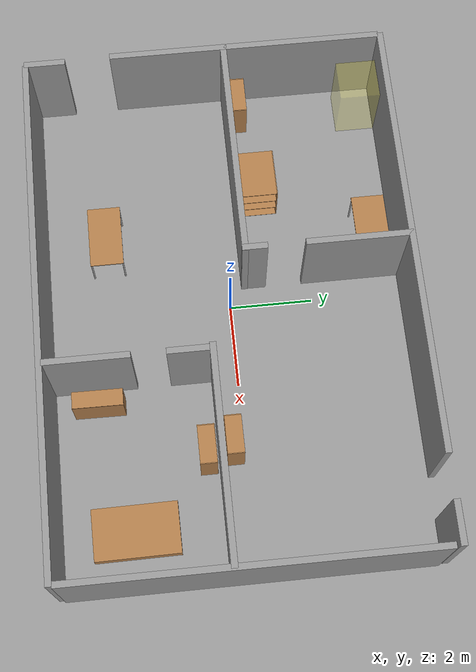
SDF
<sdf version="1.6">
 <world name="default">
  <light name="sun" type="directional">
   <pose>0 0 10 0 -0 0</pose>
   <diffuse>0.8 0.8 0.8 1</diffuse>
   <specular>0.2 0.2 0.2 1</specular>
   <attenuation>
    <range>1000</range>
    <constant>0.9</constant>
    <linear>0.01</linear>
    <quadratic>0.001</quadratic>
   </attenuation>
   <direction>-0.5 0.1 -0.9</direction>
  </light>
  <model name="ground_plane">
   <static>1</static>
   <link name="link">
    <collision name="collision">
     <geometry><plane><normal>0 0 1</normal><size>100 100</size></plane></geometry>
     <surface><friction><ode><mu>100</mu><mu2>50</mu2></ode></friction></surface>
    </collision>
    <visual name="visual">
     <cast_shadows>0</cast_shadows>
     <geometry><plane><normal>0 0 1</normal><size>100 100</size></plane></geometry>
     <material>
      <script><uri>file://media/materials/scripts/gazebo.material</uri><name>Gazebo/Grey</name></script>
     </material>
    </visual>
   </link>
  </model>
  <gravity>0 0 -9.8</gravity>
  <magnetic_field>6e-06 2.3e-05 -4.2e-05</magnetic_field>
  <atmosphere type="adiabatic"/>
  <physics name="default_physics" default="0" type="ode">
   <max_step_size>0.001</max_step_size>
   <real_time_factor>1</real_time_factor>
   <real_time_update_rate>1000</real_time_update_rate>
  </physics>
  <scene><ambient>0.4 0.4 0.4 1</ambient><background>0.7 0.7 0.7 1</background><shadows>1</shadows></scene>
  <spherical_coordinates>
   <surface_model>EARTH_WGS84</surface_model>
   <latitude_deg>0</latitude_deg>
   <longitude_deg>0</longitude_deg>
   <elevation>0</elevation>
   <heading_deg>0</heading_deg>
  </spherical_coordinates>
  <model name="hw1">
   <pose>0.37698 -0.093 0 0 -0 0</pose>
   <link name="Wall_10">
    <collision name="Wall_10_Collision">
     <geometry><box><size>1 0.15 2.5</size></box></geometry>
     <pose>0 0 1.25 0 -0 0</pose>
    </collision>
    <visual name="Wall_10_Visual">
     <pose>0 0 1.25 0 -0 0</pose>
     <geometry><box><size>1 0.15 2.5</size></box></geometry>
     <material>
      <script><uri>file://media/materials/scripts/gazebo.material</uri><name>Gazebo/Grey</name></script>
      <ambient>1 1 1 1</ambient>
     </material>
     <meta><layer>0</layer></meta>
    </visual>
    <pose>5.80062 4.35984 0 0 -0 3.14159</pose>
   </link>
   <link name="Wall_12">
    <collision name="Wall_12_Collision">
     <geometry><box><size>10.6 0.15 2.5</size></box></geometry>
     <pose>0 0 1.25 0 -0 0</pose>
    </collision>
    <visual name="Wall_12_Visual">
     <pose>0 0 1.25 0 -0 0</pose>
     <geometry><box><size>10.6 0.15 2.5</size></box></geometry>
     <material>
      <script><uri>file://media/materials/scripts/gazebo.material</uri><name>Gazebo/Grey</name></script>
      <ambient>1 1 1 1</ambient>
     </material>
     <meta><layer>0</layer></meta>
    </visual>
    <pose>-0.997757 4.35501 0 0 -0 0</pose>
   </link>
   <link name="Wall_14">
    <collision name="Wall_14_Collision">
     <geometry><box><size>6.6 0.15 2.5</size></box></geometry>
     <pose>0 0 1.25 0 -0 0</pose>
    </collision>
    <visual name="Wall_14_Visual">
     <pose>0 0 1.25 0 -0 0</pose>
     <geometry><box><size>6.6 0.15 2.5</size></box></geometry>
     <material>
      <script><uri>file://media/materials/scripts/gazebo.material</uri><name>Gazebo/Grey</name></script>
      <ambient>1 1 1 1</ambient>
     </material>
     <meta><layer>0</layer></meta>
    </visual>
    <pose>-6.2654 0.998055 0 0 0 -1.5708</pose>
   </link>
   <link name="Wall_16">
    <collision name="Wall_16_Collision">
     <geometry><box><size>5.5 0.15 2.5</size></box></geometry>
     <pose>0 0 1.25 0 -0 0</pose>
    </collision>
    <visual name="Wall_16_Visual">
     <pose>0 0 1.25 0 -0 0</pose>
     <geometry><box><size>5.5 0.15 2.5</size></box></geometry>
     <material>
      <script><uri>file://media/materials/scripts/gazebo.material</uri><name>Gazebo/Grey</name></script>
      <ambient>1 1 1 1</ambient>
     </material>
     <meta><layer>0</layer></meta>
    </visual>
    <pose>-3.58379 0.483785 0 0 -0 0</pose>
   </link>
   <link name="Wall_18">
    <collision name="Wall_18_Collision">
     <geometry><box><size>2.5 0.15 2.5</size></box></geometry>
     <pose>0 0 1.25 0 -0 0</pose>
    </collision>
    <visual name="Wall_18_Visual">
     <pose>0 0 1.25 0 -0 0</pose>
     <geometry><box><size>2.5 0.15 2.5</size></box></geometry>
     <material>
      <script><uri>file://media/materials/scripts/gazebo.material</uri><name>Gazebo/Grey</name></script>
      <ambient>1 1 1 1</ambient>
     </material>
     <meta><layer>0</layer></meta>
    </visual>
    <pose>-0.915694 3.14276 0 0 0 -1.5708</pose>
   </link>
   <link name="Wall_20">
    <collision name="Wall_20_Collision">
     <geometry><box><size>0.6 0.15 2.5</size></box></geometry>
     <pose>0 0 1.25 0 -0 0</pose>
    </collision>
    <visual name="Wall_20_Visual">
     <pose>0 0 1.25 0 -0 0</pose>
     <geometry><box><size>0.6 0.15 2.5</size></box></geometry>
     <material>
      <script><uri>file://media/materials/scripts/gazebo.material</uri><name>Gazebo/Grey</name></script>
      <ambient>1 1 1 1</ambient>
     </material>
     <meta><layer>0</layer></meta>
    </visual>
    <pose>-0.915694 0.707441 0 0 0 -1.5708</pose>
   </link>
   <link name="Wall_22">
    <collision name="Wall_22_Collision">
     <geometry><box><size>2 0.15 2.5</size></box></geometry>
     <pose>0 0 1.25 0 -0 0</pose>
    </collision>
    <visual name="Wall_22_Visual">
     <pose>0 0 1.25 0 -0 0</pose>
     <geometry><box><size>2 0.15 2.5</size></box></geometry>
     <material>
      <script><uri>file://media/materials/scripts/gazebo.material</uri><name>Gazebo/Grey</name></script>
      <ambient>1 1 1 1</ambient>
     </material>
     <meta><layer>0</layer></meta>
    </visual>
    <pose>1.40916 -3.3167 0 0 0 -1.5708</pose>
   </link>
   <link name="Wall_24">
    <collision name="Wall_24_Collision">
     <geometry><box><size>1 0.15 2.5</size></box></geometry>
     <pose>0 0 1.25 0 -0 0</pose>
    </collision>
    <visual name="Wall_24_Visual">
     <pose>0 0 1.25 0 -0 0</pose>
     <geometry><box><size>1 0.15 2.5</size></box></geometry>
     <material>
      <script><uri>file://media/materials/scripts/gazebo.material</uri><name>Gazebo/Grey</name></script>
      <ambient>1 1 1 1</ambient>
     </material>
     <meta><layer>0</layer></meta>
    </visual>
    <pose>1.40916 -1.02207 0 0 0 -1.5708</pose>
   </link>
   <link name="Wall_26">
    <collision name="Wall_26_Collision">
     <geometry><box><size>5 0.15 2.5</size></box></geometry>
     <pose>0 0 1.25 0 -0 0</pose>
    </collision>
    <visual name="Wall_26_Visual">
     <pose>0 0 1.25 0 -0 0</pose>
     <geometry><box><size>5 0.15 2.5</size></box></geometry>
     <material>
      <script><uri>file://media/materials/scripts/gazebo.material</uri><name>Gazebo/Grey</name></script>
      <ambient>1 1 1 1</ambient>
     </material>
     <meta><layer>0</layer></meta>
    </visual>
    <pose>3.79338 -0.474709 0 0 -0 0</pose>
   </link>
   <link name="Wall_4">
    <collision name="Wall_4_Collision">
     <geometry><box><size>8.5 0.15 2.5</size></box></geometry>
     <pose>0 0 1.25 0 -0 0</pose>
    </collision>
    <visual name="Wall_4_Visual">
     <pose>0 0 1.25 0 -0 0</pose>
     <geometry><box><size>8.5 0.15 2.5</size></box></geometry>
     <material>
      <script><uri>file://media/materials/scripts/gazebo.material</uri><name>Gazebo/Grey</name></script>
      <ambient>1 1 1 1</ambient>
     </material>
     <meta><layer>0</layer></meta>
    </visual>
    <pose>6.2654 -0.044264 0 0 0 -1.5708</pose>
   </link>
   <link name="Wall_6">
    <collision name="Wall_6_Collision">
     <geometry><box><size>12.5 0.15 2.5</size></box></geometry>
     <pose>0 0 1.25 0 -0 0</pose>
    </collision>
    <visual name="Wall_6_Visual">
     <pose>0 0 1.25 0 -0 0</pose>
     <geometry><box><size>12.5 0.15 2.5</size></box></geometry>
     <material>
      <script><uri>file://media/materials/scripts/gazebo.material</uri><name>Gazebo/Grey</name></script>
      <ambient>1 1 1 1</ambient>
     </material>
     <meta><layer>0</layer></meta>
    </visual>
    <pose>0.050617 -4.35984 0 0 -0 3.14159</pose>
   </link>
   <link name="Wall_8">
    <collision name="Wall_8_Collision">
     <geometry><box><size>1 0.15 2.5</size></box></geometry>
     <pose>0 0 1.25 0 -0 0</pose>
    </collision>
    <visual name="Wall_8_Visual">
     <pose>0 0 1.25 0 -0 0</pose>
     <geometry><box><size>1 0.15 2.5</size></box></geometry>
     <material>
      <script><uri>file://media/materials/scripts/gazebo.material</uri><name>Gazebo/Grey</name></script>
      <ambient>1 1 1 1</ambient>
     </material>
     <meta><layer>0</layer></meta>
    </visual>
    <pose>-6.22528 -3.89428 0 0 -0 1.5708</pose>
   </link>
   <static>1</static>
  </model>
  <model name="bookshelf">
   <static>1</static>
   <link name="link">
    <inertial><mass>1</mass></inertial>
    <collision name="back">
     <pose>0 0.005 0.6 0 -0 0</pose>
     <geometry><box><size>0.9 0.01 1.2</size></box></geometry>
    </collision>
    <visual name="visual1">
     <pose>0 0.005 0.6 0 -0 0</pose>
     <geometry><box><size>0.9 0.01 1.2</size></box></geometry>
     <material>
      <script><uri>file://media/materials/scripts/gazebo.material</uri><name>Gazebo/Wood</name></script>
     </material>
    </visual>
    <collision name="left_side">
     <pose>0.45 -0.195 0.6 0 -0 0</pose>
     <geometry><box><size>0.02 0.4 1.2</size></box></geometry>
    </collision>
    <visual name="visual2">
     <pose>0.45 -0.195 0.6 0 -0 0</pose>
     <geometry><box><size>0.02 0.4 1.2</size></box></geometry>
     <material>
      <script><uri>file://media/materials/scripts/gazebo.material</uri><name>Gazebo/Wood</name></script>
     </material>
    </visual>
    <collision name="right_side">
     <pose>-0.45 -0.195 0.6 0 -0 0</pose>
     <geometry><box><size>0.02 0.4 1.2</size></box></geometry>
    </collision>
    <visual name="visual3">
     <pose>-0.45 -0.195 0.6 0 -0 0</pose>
     <geometry><box><size>0.02 0.4 1.2</size></box></geometry>
     <material>
      <script><uri>file://media/materials/scripts/gazebo.material</uri><name>Gazebo/Wood</name></script>
     </material>
    </visual>
    <collision name="bottom">
     <pose>0 -0.195 0.03 0 -0 0</pose>
     <geometry><box><size>0.88 0.4 0.06</size></box></geometry>
    </collision>
    <visual name="visual4">
     <pose>0 -0.195 0.03 0 -0 0</pose>
     <geometry><box><size>0.88 0.4 0.06</size></box></geometry>
     <material>
      <script><uri>file://media/materials/scripts/gazebo.material</uri><name>Gazebo/Wood</name></script>
     </material>
    </visual>
    <collision name="top">
     <pose>0 -0.195 1.19 0 -0 0</pose>
     <geometry><box><size>0.88 0.4 0.02</size></box></geometry>
    </collision>
    <visual name="visual5">
     <pose>0 -0.195 1.19 0 -0 0</pose>
     <geometry><box><size>0.88 0.4 0.02</size></box></geometry>
     <material>
      <script><uri>file://media/materials/scripts/gazebo.material</uri><name>Gazebo/Wood</name></script>
     </material>
    </visual>
    <collision name="low_shelf">
     <pose>0 -0.195 0.43 0 -0 0</pose>
     <geometry><box><size>0.88 0.4 0.02</size></box></geometry>
    </collision>
    <visual name="visual6">
     <pose>0 -0.195 0.43 0 -0 0</pose>
     <geometry><box><size>0.88 0.4 0.02</size></box></geometry>
     <material>
      <script><uri>file://media/materials/scripts/gazebo.material</uri><name>Gazebo/Wood</name></script>
     </material>
    </visual>
    <collision name="high_shelf">
     <pose>0 -0.195 0.8 0 -0 0</pose>
     <geometry><box><size>0.88 0.4 0.02</size></box></geometry>
    </collision>
    <visual name="visual7">
     <pose>0 -0.195 0.8 0 -0 0</pose>
     <geometry><box><size>0.88 0.4 0.02</size></box></geometry>
     <material>
      <script><uri>file://media/materials/scripts/gazebo.material</uri><name>Gazebo/Wood</name></script>
     </material>
    </visual>
   </link>
   <pose>-5.28709 0.493344 0 0 -0 3.13698</pose>
  </model>
  <model name="bookshelf_0">
   <static>1</static>
   <link name="link">
    <inertial><mass>1</mass></inertial>
    <collision name="back">
     <pose>0 0.005 0.6 0 -0 0</pose>
     <geometry><box><size>0.9 0.01 1.2</size></box></geometry>
    </collision>
    <visual name="visual1">
     <pose>0 0.005 0.6 0 -0 0</pose>
     <geometry><box><size>0.9 0.01 1.2</size></box></geometry>
     <material>
      <script><uri>file://media/materials/scripts/gazebo.material</uri><name>Gazebo/Wood</name></script>
     </material>
    </visual>
    <collision name="left_side">
     <pose>0.45 -0.195 0.6 0 -0 0</pose>
     <geometry><box><size>0.02 0.4 1.2</size></box></geometry>
    </collision>
    <visual name="visual2">
     <pose>0.45 -0.195 0.6 0 -0 0</pose>
     <geometry><box><size>0.02 0.4 1.2</size></box></geometry>
     <material>
      <script><uri>file://media/materials/scripts/gazebo.material</uri><name>Gazebo/Wood</name></script>
     </material>
    </visual>
    <collision name="right_side">
     <pose>-0.45 -0.195 0.6 0 -0 0</pose>
     <geometry><box><size>0.02 0.4 1.2</size></box></geometry>
    </collision>
    <visual name="visual3">
     <pose>-0.45 -0.195 0.6 0 -0 0</pose>
     <geometry><box><size>0.02 0.4 1.2</size></box></geometry>
     <material>
      <script><uri>file://media/materials/scripts/gazebo.material</uri><name>Gazebo/Wood</name></script>
     </material>
    </visual>
    <collision name="bottom">
     <pose>0 -0.195 0.03 0 -0 0</pose>
     <geometry><box><size>0.88 0.4 0.06</size></box></geometry>
    </collision>
    <visual name="visual4">
     <pose>0 -0.195 0.03 0 -0 0</pose>
     <geometry><box><size>0.88 0.4 0.06</size></box></geometry>
     <material>
      <script><uri>file://media/materials/scripts/gazebo.material</uri><name>Gazebo/Wood</name></script>
     </material>
    </visual>
    <collision name="top">
     <pose>0 -0.195 1.19 0 -0 0</pose>
     <geometry><box><size>0.88 0.4 0.02</size></box></geometry>
    </collision>
    <visual name="visual5">
     <pose>0 -0.195 1.19 0 -0 0</pose>
     <geometry><box><size>0.88 0.4 0.02</size></box></geometry>
     <material>
      <script><uri>file://media/materials/scripts/gazebo.material</uri><name>Gazebo/Wood</name></script>
     </material>
    </visual>
    <collision name="low_shelf">
     <pose>0 -0.195 0.43 0 -0 0</pose>
     <geometry><box><size>0.88 0.4 0.02</size></box></geometry>
    </collision>
    <visual name="visual6">
     <pose>0 -0.195 0.43 0 -0 0</pose>
     <geometry><box><size>0.88 0.4 0.02</size></box></geometry>
     <material>
      <script><uri>file://media/materials/scripts/gazebo.material</uri><name>Gazebo/Wood</name></script>
     </material>
    </visual>
    <collision name="high_shelf">
     <pose>0 -0.195 0.8 0 -0 0</pose>
     <geometry><box><size>0.88 0.4 0.02</size></box></geometry>
    </collision>
    <visual name="visual7">
     <pose>0 -0.195 0.8 0 -0 0</pose>
     <geometry><box><size>0.88 0.4 0.02</size></box></geometry>
     <material>
      <script><uri>file://media/materials/scripts/gazebo.material</uri><name>Gazebo/Wood</name></script>
     </material>
    </visual>
   </link>
   <pose>3.652 -0.69528 0 0 -0 0</pose>
  </model>
  <model name="bookshelf_1">
   <static>1</static>
   <link name="link">
    <inertial><mass>1</mass></inertial>
    <collision name="back">
     <pose>0 0.005 0.6 0 -0 0</pose>
     <geometry><box><size>0.9 0.01 1.2</size></box></geometry>
    </collision>
    <visual name="visual1">
     <pose>0 0.005 0.6 0 -0 0</pose>
     <geometry><box><size>0.9 0.01 1.2</size></box></geometry>
     <material>
      <script><uri>file://media/materials/scripts/gazebo.material</uri><name>Gazebo/Wood</name></script>
     </material>
    </visual>
    <collision name="left_side">
     <pose>0.45 -0.195 0.6 0 -0 0</pose>
     <geometry><box><size>0.02 0.4 1.2</size></box></geometry>
    </collision>
    <visual name="visual2">
     <pose>0.45 -0.195 0.6 0 -0 0</pose>
     <geometry><box><size>0.02 0.4 1.2</size></box></geometry>
     <material>
      <script><uri>file://media/materials/scripts/gazebo.material</uri><name>Gazebo/Wood</name></script>
     </material>
    </visual>
    <collision name="right_side">
     <pose>-0.45 -0.195 0.6 0 -0 0</pose>
     <geometry><box><size>0.02 0.4 1.2</size></box></geometry>
    </collision>
    <visual name="visual3">
     <pose>-0.45 -0.195 0.6 0 -0 0</pose>
     <geometry><box><size>0.02 0.4 1.2</size></box></geometry>
     <material>
      <script><uri>file://media/materials/scripts/gazebo.material</uri><name>Gazebo/Wood</name></script>
     </material>
    </visual>
    <collision name="bottom">
     <pose>0 -0.195 0.03 0 -0 0</pose>
     <geometry><box><size>0.88 0.4 0.06</size></box></geometry>
    </collision>
    <visual name="visual4">
     <pose>0 -0.195 0.03 0 -0 0</pose>
     <geometry><box><size>0.88 0.4 0.06</size></box></geometry>
     <material>
      <script><uri>file://media/materials/scripts/gazebo.material</uri><name>Gazebo/Wood</name></script>
     </material>
    </visual>
    <collision name="top">
     <pose>0 -0.195 1.19 0 -0 0</pose>
     <geometry><box><size>0.88 0.4 0.02</size></box></geometry>
    </collision>
    <visual name="visual5">
     <pose>0 -0.195 1.19 0 -0 0</pose>
     <geometry><box><size>0.88 0.4 0.02</size></box></geometry>
     <material>
      <script><uri>file://media/materials/scripts/gazebo.material</uri><name>Gazebo/Wood</name></script>
     </material>
    </visual>
    <collision name="low_shelf">
     <pose>0 -0.195 0.43 0 -0 0</pose>
     <geometry><box><size>0.88 0.4 0.02</size></box></geometry>
    </collision>
    <visual name="visual6">
     <pose>0 -0.195 0.43 0 -0 0</pose>
     <geometry><box><size>0.88 0.4 0.02</size></box></geometry>
     <material>
      <script><uri>file://media/materials/scripts/gazebo.material</uri><name>Gazebo/Wood</name></script>
     </material>
    </visual>
    <collision name="high_shelf">
     <pose>0 -0.195 0.8 0 -0 0</pose>
     <geometry><box><size>0.88 0.4 0.02</size></box></geometry>
    </collision>
    <visual name="visual7">
     <pose>0 -0.195 0.8 0 -0 0</pose>
     <geometry><box><size>0.88 0.4 0.02</size></box></geometry>
     <material>
      <script><uri>file://media/materials/scripts/gazebo.material</uri><name>Gazebo/Wood</name></script>
     </material>
    </visual>
   </link>
   <pose>3.48245 -0.44691 0 0 0 -3.13733</pose>
  </model>
  <model name="RegionEventBox">
   <static>1</static>
   <pose>-5.12642 3.7104 0.845171 0 -0 0</pose>
   <link name="link">
    <visual name="visual">
     <transparency>0.75</transparency>
     <geometry><box><size>1 1 1.75</size></box></geometry>
     <material>
      <script><uri>file://media/materials/scripts/gazebo.material</uri><name>Gazebo/Yellow</name></script>
     </material>
    </visual>
   </link>
   <plugin name="region_event_box" filename="libRegionEventBoxPlugin.so">
    <event><name>model_in_region_event_box</name><type>inclusion</type><active>true</active></event>
   </plugin>
  </model>
  <model name="table_clone_clone">
   <static>1</static>
   <link name="link">
    <collision name="surface">
     <pose>0 0 1 0 -0 0</pose>
     <geometry><box><size>1.5 0.8 0.03</size></box></geometry>
     <surface><friction><ode><mu>0.6</mu><mu2>0.6</mu2></ode></friction></surface>
    </collision>
    <visual name="visual1">
     <pose>0 0 1 0 -0 0</pose>
     <geometry><box><size>1.5 0.8 0.03</size></box></geometry>
     <material>
      <script><uri>file://media/materials/scripts/gazebo.material</uri><name>Gazebo/Wood</name></script>
     </material>
    </visual>
    <collision name="front_left_leg">
     <pose>0.68 0.38 0.5 0 -0 0</pose>
     <geometry><cylinder><radius>0.02</radius><length>1</length></cylinder></geometry>
    </collision>
    <visual name="front_left_leg">
     <pose>0.68 0.38 0.5 0 -0 0</pose>
     <geometry><cylinder><radius>0.02</radius><length>1</length></cylinder></geometry>
     <material>
      <script><uri>file://media/materials/scripts/gazebo.material</uri><name>Gazebo/Grey</name></script>
     </material>
    </visual>
    <collision name="front_right_leg">
     <pose>0.68 -0.38 0.5 0 -0 0</pose>
     <geometry><cylinder><radius>0.02</radius><length>1</length></cylinder></geometry>
    </collision>
    <visual name="front_right_leg">
     <pose>0.68 -0.38 0.5 0 -0 0</pose>
     <geometry><cylinder><radius>0.02</radius><length>1</length></cylinder></geometry>
     <material>
      <script><uri>file://media/materials/scripts/gazebo.material</uri><name>Gazebo/Grey</name></script>
     </material>
    </visual>
    <collision name="back_right_leg">
     <pose>-0.68 -0.38 0.5 0 -0 0</pose>
     <geometry><cylinder><radius>0.02</radius><length>1</length></cylinder></geometry>
    </collision>
    <visual name="back_right_leg">
     <pose>-0.68 -0.38 0.5 0 -0 0</pose>
     <geometry><cylinder><radius>0.02</radius><length>1</length></cylinder></geometry>
     <material>
      <script><uri>file://media/materials/scripts/gazebo.material</uri><name>Gazebo/Grey</name></script>
     </material>
    </visual>
    <collision name="back_left_leg">
     <pose>-0.68 0.38 0.5 0 -0 0</pose>
     <geometry><cylinder><radius>0.02</radius><length>1</length></cylinder></geometry>
    </collision>
    <visual name="back_left_leg">
     <pose>-0.68 0.38 0.5 0 -0 0</pose>
     <geometry><cylinder><radius>0.02</radius><length>1</length></cylinder></geometry>
     <material>
      <script><uri>file://media/materials/scripts/gazebo.material</uri><name>Gazebo/Grey</name></script>
     </material>
    </visual>
   </link>
   <pose>-1.7816 -2.89123 0 0 -0 3.14118</pose>
  </model>
  <model name="bookshelf_0_clone_1">
   <static>1</static>
   <link name="link">
    <inertial><mass>1</mass></inertial>
    <collision name="back">
     <pose>0 0.005 0.6 0 -0 0</pose>
     <geometry><box><size>0.9 0.01 1.2</size></box></geometry>
    </collision>
    <visual name="visual1">
     <pose>0 0.005 0.6 0 -0 0</pose>
     <geometry><box><size>0.9 0.01 1.2</size></box></geometry>
     <material>
      <script><uri>file://media/materials/scripts/gazebo.material</uri><name>Gazebo/Wood</name></script>
     </material>
    </visual>
    <collision name="left_side">
     <pose>0.45 -0.195 0.6 0 -0 0</pose>
     <geometry><box><size>0.02 0.4 1.2</size></box></geometry>
    </collision>
    <visual name="visual2">
     <pose>0.45 -0.195 0.6 0 -0 0</pose>
     <geometry><box><size>0.02 0.4 1.2</size></box></geometry>
     <material>
      <script><uri>file://media/materials/scripts/gazebo.material</uri><name>Gazebo/Wood</name></script>
     </material>
    </visual>
    <collision name="right_side">
     <pose>-0.45 -0.195 0.6 0 -0 0</pose>
     <geometry><box><size>0.02 0.4 1.2</size></box></geometry>
    </collision>
    <visual name="visual3">
     <pose>-0.45 -0.195 0.6 0 -0 0</pose>
     <geometry><box><size>0.02 0.4 1.2</size></box></geometry>
     <material>
      <script><uri>file://media/materials/scripts/gazebo.material</uri><name>Gazebo/Wood</name></script>
     </material>
    </visual>
    <collision name="bottom">
     <pose>0 -0.195 0.03 0 -0 0</pose>
     <geometry><box><size>0.88 0.4 0.06</size></box></geometry>
    </collision>
    <visual name="visual4">
     <pose>0 -0.195 0.03 0 -0 0</pose>
     <geometry><box><size>0.88 0.4 0.06</size></box></geometry>
     <material>
      <script><uri>file://media/materials/scripts/gazebo.material</uri><name>Gazebo/Wood</name></script>
     </material>
    </visual>
    <collision name="top">
     <pose>0 -0.195 1.19 0 -0 0</pose>
     <geometry><box><size>0.88 0.4 0.02</size></box></geometry>
    </collision>
    <visual name="visual5">
     <pose>0 -0.195 1.19 0 -0 0</pose>
     <geometry><box><size>0.88 0.4 0.02</size></box></geometry>
     <material>
      <script><uri>file://media/materials/scripts/gazebo.material</uri><name>Gazebo/Wood</name></script>
     </material>
    </visual>
    <collision name="low_shelf">
     <pose>0 -0.195 0.43 0 -0 0</pose>
     <geometry><box><size>0.88 0.4 0.02</size></box></geometry>
    </collision>
    <visual name="visual6">
     <pose>0 -0.195 0.43 0 -0 0</pose>
     <geometry><box><size>0.88 0.4 0.02</size></box></geometry>
     <material>
      <script><uri>file://media/materials/scripts/gazebo.material</uri><name>Gazebo/Wood</name></script>
     </material>
    </visual>
    <collision name="high_shelf">
     <pose>0 -0.195 0.8 0 -0 0</pose>
     <geometry><box><size>0.88 0.4 0.02</size></box></geometry>
    </collision>
    <visual name="visual7">
     <pose>0 -0.195 0.8 0 -0 0</pose>
     <geometry><box><size>0.88 0.4 0.02</size></box></geometry>
     <material>
      <script><uri>file://media/materials/scripts/gazebo.material</uri><name>Gazebo/Wood</name></script>
     </material>
    </visual>
   </link>
   <pose>2.47193 -2.73487 0.456651 1.86 1.54697 0.277624</pose>
  </model>
  <model name="table_clone_clone_clone">
   <static>1</static>
   <link name="link">
    <collision name="surface">
     <pose>0 0 1 0 -0 0</pose>
     <geometry><box><size>1.5 0.8 0.03</size></box></geometry>
     <surface><friction><ode><mu>0.6</mu><mu2>0.6</mu2></ode></friction></surface>
    </collision>
    <visual name="visual1">
     <pose>0 0 1 0 -0 0</pose>
     <geometry><box><size>1.5 0.8 0.03</size></box></geometry>
     <material>
      <script><uri>file://media/materials/scripts/gazebo.material</uri><name>Gazebo/Wood</name></script>
     </material>
    </visual>
    <collision name="front_left_leg">
     <pose>0.68 0.38 0.5 0 -0 0</pose>
     <geometry><cylinder><radius>0.02</radius><length>1</length></cylinder></geometry>
    </collision>
    <visual name="front_left_leg">
     <pose>0.68 0.38 0.5 0 -0 0</pose>
     <geometry><cylinder><radius>0.02</radius><length>1</length></cylinder></geometry>
     <material>
      <script><uri>file://media/materials/scripts/gazebo.material</uri><name>Gazebo/Grey</name></script>
     </material>
    </visual>
    <collision name="front_right_leg">
     <pose>0.68 -0.38 0.5 0 -0 0</pose>
     <geometry><cylinder><radius>0.02</radius><length>1</length></cylinder></geometry>
    </collision>
    <visual name="front_right_leg">
     <pose>0.68 -0.38 0.5 0 -0 0</pose>
     <geometry><cylinder><radius>0.02</radius><length>1</length></cylinder></geometry>
     <material>
      <script><uri>file://media/materials/scripts/gazebo.material</uri><name>Gazebo/Grey</name></script>
     </material>
    </visual>
    <collision name="back_right_leg">
     <pose>-0.68 -0.38 0.5 0 -0 0</pose>
     <geometry><cylinder><radius>0.02</radius><length>1</length></cylinder></geometry>
    </collision>
    <visual name="back_right_leg">
     <pose>-0.68 -0.38 0.5 0 -0 0</pose>
     <geometry><cylinder><radius>0.02</radius><length>1</length></cylinder></geometry>
     <material>
      <script><uri>file://media/materials/scripts/gazebo.material</uri><name>Gazebo/Grey</name></script>
     </material>
    </visual>
    <collision name="back_left_leg">
     <pose>-0.68 0.38 0.5 0 -0 0</pose>
     <geometry><cylinder><radius>0.02</radius><length>1</length></cylinder></geometry>
    </collision>
    <visual name="back_left_leg">
     <pose>-0.68 0.38 0.5 0 -0 0</pose>
     <geometry><cylinder><radius>0.02</radius><length>1</length></cylinder></geometry>
     <material>
      <script><uri>file://media/materials/scripts/gazebo.material</uri><name>Gazebo/Grey</name></script>
     </material>
    </visual>
   </link>
   <pose>-1.48338 3.6001 0 0 -0 3.14118</pose>
  </model>
  <model name="ground_plane_0">
   <static>1</static>
   <link name="link">
    <collision name="collision">
     <geometry><plane><normal>0 0 1</normal><size>100 100</size></plane></geometry>
     <surface>
      <contact><collide_bitmask>65535</collide_bitmask></contact>
      <friction><ode><mu>100</mu><mu2>50</mu2></ode></friction>
     </surface>
    </collision>
    <visual name="visual">
     <cast_shadows>0</cast_shadows>
     <geometry><plane><normal>0 0 1</normal><size>100 100</size></plane></geometry>
     <material>
      <script><uri>file://media/materials/scripts/gazebo.material</uri><name>Gazebo/Grey</name></script>
     </material>
    </visual>
   </link>
   <pose>-3.11469 3.67475 0 0 -0 0</pose>
  </model>
  <model name="big_shelf">
   <link name="link">
    <inertial>
     <mass>2.956</mass>
     <inertia>
      <ixx>0.350055</ixx>
      <ixy>0</ixy>
      <ixz>0</ixz>
      <iyy>0.190859</iyy>
      <iyz>0</iyz>
      <izz>0.540716</izz>
     </inertia>
    </inertial>
    <visual name="visual1">
     <pose>0 0.005 0.6 0 -0 0</pose>
     <geometry><box><size>0.9 0.028207 1.2</size></box></geometry>
     <material>
      <script><uri>file://media/materials/scripts/gazebo.material</uri><name>Gazebo/Wood</name></script>
      <shader type="pixel"><normal_map>__default__</normal_map></shader>
      <ambient>1 1 1 1</ambient>
      <diffuse>1 1 1 1</diffuse>
      <specular>0.2 0.2 0.2 1</specular>
      <emissive>0 0 0 1</emissive>
     </material>
    </visual>
    <visual name="visual2">
     <pose>0.45 -0.195 0.6 0 -0 0</pose>
     <geometry><box><size>0.02 1.19192 1.2</size></box></geometry>
     <material>
      <script><uri>file://media/materials/scripts/gazebo.material</uri><name>Gazebo/Wood</name></script>
      <shader type="pixel"><normal_map>__default__</normal_map></shader>
      <ambient>1 1 1 1</ambient>
      <diffuse>1 1 1 1</diffuse>
      <specular>0.2 0.2 0.2 1</specular>
      <emissive>0 0 0 1</emissive>
     </material>
    </visual>
    <visual name="visual3">
     <pose>-0.45 -0.195 0.6 0 -0 0</pose>
     <geometry><box><size>0.02 1.19192 1.2</size></box></geometry>
     <material>
      <script><uri>file://media/materials/scripts/gazebo.material</uri><name>Gazebo/Wood</name></script>
      <shader type="pixel"><normal_map>__default__</normal_map></shader>
      <ambient>1 1 1 1</ambient>
      <diffuse>1 1 1 1</diffuse>
      <specular>0.2 0.2 0.2 1</specular>
      <emissive>0 0 0 1</emissive>
     </material>
    </visual>
    <visual name="visual4">
     <pose>0 -0.195 0.03 0 -0 0</pose>
     <geometry><box><size>0.88 1.19192 0.06</size></box></geometry>
     <material>
      <script><uri>file://media/materials/scripts/gazebo.material</uri><name>Gazebo/Wood</name></script>
      <shader type="pixel"><normal_map>__default__</normal_map></shader>
      <ambient>1 1 1 1</ambient>
      <diffuse>1 1 1 1</diffuse>
      <specular>0.2 0.2 0.2 1</specular>
      <emissive>0 0 0 1</emissive>
     </material>
    </visual>
    <visual name="visual5">
     <pose>0 -0.195 1.19 0 -0 0</pose>
     <geometry><box><size>0.88 1.19192 0.02</size></box></geometry>
     <material>
      <script><uri>file://media/materials/scripts/gazebo.material</uri><name>Gazebo/Wood</name></script>
      <shader type="pixel"><normal_map>__default__</normal_map></shader>
      <ambient>1 1 1 1</ambient>
      <diffuse>1 1 1 1</diffuse>
      <specular>0.2 0.2 0.2 1</specular>
      <emissive>0 0 0 1</emissive>
     </material>
    </visual>
    <visual name="visual6">
     <pose>0 -0.195 0.43 0 -0 0</pose>
     <geometry><box><size>0.88 1.19192 0.02</size></box></geometry>
     <material>
      <script><uri>file://media/materials/scripts/gazebo.material</uri><name>Gazebo/Wood</name></script>
      <shader type="pixel"><normal_map>__default__</normal_map></shader>
      <ambient>1 1 1 1</ambient>
      <diffuse>1 1 1 1</diffuse>
      <specular>0.2 0.2 0.2 1</specular>
      <emissive>0 0 0 1</emissive>
     </material>
    </visual>
    <visual name="visual7">
     <pose>0 -0.195 0.8 0 -0 0</pose>
     <geometry><box><size>0.88 1.19192 0.02</size></box></geometry>
     <material>
      <script><uri>file://media/materials/scripts/gazebo.material</uri><name>Gazebo/Wood</name></script>
      <shader type="pixel"><normal_map>__default__</normal_map></shader>
      <ambient>1 1 1 1</ambient>
      <diffuse>1 1 1 1</diffuse>
      <specular>0.2 0.2 0.2 1</specular>
      <emissive>0 0 0 1</emissive>
     </material>
    </visual>
    <collision name="back">
     <pose>0 0.005 0.6 0 -0 0</pose>
     <geometry><box><size>0.9 0.028207 1.2</size></box></geometry>
     <surface>
      <friction>
       <ode><mu>1</mu><mu2>1</mu2><fdir1>0 0 0</fdir1><slip1>0</slip1><slip2>0</slip2></ode>
       <torsional>
        <coefficient>1</coefficient>
        <patch_radius>0</patch_radius>
        <surface_radius>0</surface_radius>
        <use_patch_radius>1</use_patch_radius>
        <ode><slip>0</slip></ode>
       </torsional>
      </friction>
      <bounce><restitution_coefficient>0</restitution_coefficient><threshold>1e+06</threshold></bounce>
      <contact>
       <collide_without_contact>0</collide_without_contact>
       <collide_without_contact_bitmask>1</collide_without_contact_bitmask>
       <collide_bitmask>1</collide_bitmask>
       <ode>
        <soft_cfm>0</soft_cfm>
        <soft_erp>0.2</soft_erp>
        <kp>1e+13</kp>
        <kd>1</kd>
        <max_vel>0.01</max_vel>
        <min_depth>0</min_depth>
       </ode>
       <bullet>
        <split_impulse>1</split_impulse>
        <split_impulse_penetration_threshold>-0.01</split_impulse_penetration_threshold>
        <soft_cfm>0</soft_cfm>
        <soft_erp>0.2</soft_erp>
        <kp>1e+13</kp>
        <kd>1</kd>
       </bullet>
      </contact>
     </surface>
    </collision>
    <collision name="left_side">
     <pose>0.45 -0.195 0.6 0 -0 0</pose>
     <geometry><box><size>0.02 1.19192 1.2</size></box></geometry>
     <surface>
      <friction>
       <ode><mu>1</mu><mu2>1</mu2><fdir1>0 0 0</fdir1><slip1>0</slip1><slip2>0</slip2></ode>
       <torsional>
        <coefficient>1</coefficient>
        <patch_radius>0</patch_radius>
        <surface_radius>0</surface_radius>
        <use_patch_radius>1</use_patch_radius>
        <ode><slip>0</slip></ode>
       </torsional>
      </friction>
      <bounce><restitution_coefficient>0</restitution_coefficient><threshold>1e+06</threshold></bounce>
      <contact>
       <collide_without_contact>0</collide_without_contact>
       <collide_without_contact_bitmask>1</collide_without_contact_bitmask>
       <collide_bitmask>1</collide_bitmask>
       <ode>
        <soft_cfm>0</soft_cfm>
        <soft_erp>0.2</soft_erp>
        <kp>1e+13</kp>
        <kd>1</kd>
        <max_vel>0.01</max_vel>
        <min_depth>0</min_depth>
       </ode>
       <bullet>
        <split_impulse>1</split_impulse>
        <split_impulse_penetration_threshold>-0.01</split_impulse_penetration_threshold>
        <soft_cfm>0</soft_cfm>
        <soft_erp>0.2</soft_erp>
        <kp>1e+13</kp>
        <kd>1</kd>
       </bullet>
      </contact>
     </surface>
    </collision>
    <collision name="right_side">
     <pose>-0.45 -0.195 0.6 0 -0 0</pose>
     <geometry><box><size>0.02 1.19192 1.2</size></box></geometry>
     <surface>
      <friction>
       <ode><mu>1</mu><mu2>1</mu2><fdir1>0 0 0</fdir1><slip1>0</slip1><slip2>0</slip2></ode>
       <torsional>
        <coefficient>1</coefficient>
        <patch_radius>0</patch_radius>
        <surface_radius>0</surface_radius>
        <use_patch_radius>1</use_patch_radius>
        <ode><slip>0</slip></ode>
       </torsional>
      </friction>
      <bounce><restitution_coefficient>0</restitution_coefficient><threshold>1e+06</threshold></bounce>
      <contact>
       <collide_without_contact>0</collide_without_contact>
       <collide_without_contact_bitmask>1</collide_without_contact_bitmask>
       <collide_bitmask>1</collide_bitmask>
       <ode>
        <soft_cfm>0</soft_cfm>
        <soft_erp>0.2</soft_erp>
        <kp>1e+13</kp>
        <kd>1</kd>
        <max_vel>0.01</max_vel>
        <min_depth>0</min_depth>
       </ode>
       <bullet>
        <split_impulse>1</split_impulse>
        <split_impulse_penetration_threshold>-0.01</split_impulse_penetration_threshold>
        <soft_cfm>0</soft_cfm>
        <soft_erp>0.2</soft_erp>
        <kp>1e+13</kp>
        <kd>1</kd>
       </bullet>
      </contact>
     </surface>
    </collision>
    <collision name="bottom">
     <pose>0 -0.195 0.03 0 -0 0</pose>
     <geometry><box><size>0.88 1.19192 0.06</size></box></geometry>
     <surface>
      <friction>
       <ode><mu>1</mu><mu2>1</mu2><fdir1>0 0 0</fdir1><slip1>0</slip1><slip2>0</slip2></ode>
       <torsional>
        <coefficient>1</coefficient>
        <patch_radius>0</patch_radius>
        <surface_radius>0</surface_radius>
        <use_patch_radius>1</use_patch_radius>
        <ode><slip>0</slip></ode>
       </torsional>
      </friction>
      <bounce><restitution_coefficient>0</restitution_coefficient><threshold>1e+06</threshold></bounce>
      <contact>
       <collide_without_contact>0</collide_without_contact>
       <collide_without_contact_bitmask>1</collide_without_contact_bitmask>
       <collide_bitmask>1</collide_bitmask>
       <ode>
        <soft_cfm>0</soft_cfm>
        <soft_erp>0.2</soft_erp>
        <kp>1e+13</kp>
        <kd>1</kd>
        <max_vel>0.01</max_vel>
        <min_depth>0</min_depth>
       </ode>
       <bullet>
        <split_impulse>1</split_impulse>
        <split_impulse_penetration_threshold>-0.01</split_impulse_penetration_threshold>
        <soft_cfm>0</soft_cfm>
        <soft_erp>0.2</soft_erp>
        <kp>1e+13</kp>
        <kd>1</kd>
       </bullet>
      </contact>
     </surface>
    </collision>
    <collision name="top">
     <pose>0 -0.195 1.19 0 -0 0</pose>
     <geometry><box><size>0.88 1.19192 0.02</size></box></geometry>
     <surface>
      <friction>
       <ode><mu>1</mu><mu2>1</mu2><fdir1>0 0 0</fdir1><slip1>0</slip1><slip2>0</slip2></ode>
       <torsional>
        <coefficient>1</coefficient>
        <patch_radius>0</patch_radius>
        <surface_radius>0</surface_radius>
        <use_patch_radius>1</use_patch_radius>
        <ode><slip>0</slip></ode>
       </torsional>
      </friction>
      <bounce><restitution_coefficient>0</restitution_coefficient><threshold>1e+06</threshold></bounce>
      <contact>
       <collide_without_contact>0</collide_without_contact>
       <collide_without_contact_bitmask>1</collide_without_contact_bitmask>
       <collide_bitmask>1</collide_bitmask>
       <ode>
        <soft_cfm>0</soft_cfm>
        <soft_erp>0.2</soft_erp>
        <kp>1e+13</kp>
        <kd>1</kd>
        <max_vel>0.01</max_vel>
        <min_depth>0</min_depth>
       </ode>
       <bullet>
        <split_impulse>1</split_impulse>
        <split_impulse_penetration_threshold>-0.01</split_impulse_penetration_threshold>
        <soft_cfm>0</soft_cfm>
        <soft_erp>0.2</soft_erp>
        <kp>1e+13</kp>
        <kd>1</kd>
       </bullet>
      </contact>
     </surface>
    </collision>
    <collision name="low_shelf">
     <pose>0 -0.195 0.43 0 -0 0</pose>
     <geometry><box><size>0.88 1.19192 0.02</size></box></geometry>
     <surface>
      <friction>
       <ode><mu>1</mu><mu2>1</mu2><fdir1>0 0 0</fdir1><slip1>0</slip1><slip2>0</slip2></ode>
       <torsional>
        <coefficient>1</coefficient>
        <patch_radius>0</patch_radius>
        <surface_radius>0</surface_radius>
        <use_patch_radius>1</use_patch_radius>
        <ode><slip>0</slip></ode>
       </torsional>
      </friction>
      <bounce><restitution_coefficient>0</restitution_coefficient><threshold>1e+06</threshold></bounce>
      <contact>
       <collide_without_contact>0</collide_without_contact>
       <collide_without_contact_bitmask>1</collide_without_contact_bitmask>
       <collide_bitmask>1</collide_bitmask>
       <ode>
        <soft_cfm>0</soft_cfm>
        <soft_erp>0.2</soft_erp>
        <kp>1e+13</kp>
        <kd>1</kd>
        <max_vel>0.01</max_vel>
        <min_depth>0</min_depth>
       </ode>
       <bullet>
        <split_impulse>1</split_impulse>
        <split_impulse_penetration_threshold>-0.01</split_impulse_penetration_threshold>
        <soft_cfm>0</soft_cfm>
        <soft_erp>0.2</soft_erp>
        <kp>1e+13</kp>
        <kd>1</kd>
       </bullet>
      </contact>
     </surface>
    </collision>
    <collision name="high_shelf">
     <pose>0 -0.195 0.8 0 -0 0</pose>
     <geometry><box><size>0.88 1.19192 0.02</size></box></geometry>
     <surface>
      <friction>
       <ode><mu>1</mu><mu2>1</mu2><fdir1>0 0 0</fdir1><slip1>0</slip1><slip2>0</slip2></ode>
       <torsional>
        <coefficient>1</coefficient>
        <patch_radius>0</patch_radius>
        <surface_radius>0</surface_radius>
        <use_patch_radius>1</use_patch_radius>
        <ode><slip>0</slip></ode>
       </torsional>
      </friction>
      <bounce><restitution_coefficient>0</restitution_coefficient><threshold>1e+06</threshold></bounce>
      <contact>
       <collide_without_contact>0</collide_without_contact>
       <collide_without_contact_bitmask>1</collide_without_contact_bitmask>
       <collide_bitmask>1</collide_bitmask>
       <ode>
        <soft_cfm>0</soft_cfm>
        <soft_erp>0.2</soft_erp>
        <kp>1e+13</kp>
        <kd>1</kd>
        <max_vel>0.01</max_vel>
        <min_depth>0</min_depth>
       </ode>
       <bullet>
        <split_impulse>1</split_impulse>
        <split_impulse_penetration_threshold>-0.01</split_impulse_penetration_threshold>
        <soft_cfm>0</soft_cfm>
        <soft_erp>0.2</soft_erp>
        <kp>1e+13</kp>
        <kd>1</kd>
       </bullet>
      </contact>
     </surface>
    </collision>
   </link>
   <static>1</static>
   <pose>-2.82439 0.94232 0 0 0 -1.56719</pose>
  </model>
  <model name="table">
   <link name="link">
    <inertial>
     <mass>1</mass>
     <pose>1 0 0 0 -0 0</pose>
     <inertia><ixx>1</ixx><ixy>0</ixy><ixz>0</ixz><iyy>1</iyy><iyz>0</iyz><izz>1</izz></inertia>
    </inertial>
    <self_collide>1</self_collide>
    <kinematic>1</kinematic>
    <visual name="back_left_leg">
     <pose>-0.68 0.38 0 0 -0 0</pose>
     <geometry><cylinder><radius>0.1</radius><length>0.3</length></cylinder></geometry>
     <material>
      <script><uri>file://media/materials/scripts/gazebo.material</uri><name>Gazebo/Grey</name></script>
      <shader type="pixel"><normal_map>__default__</normal_map></shader>
      <ambient>0.3 0.3 0.3 1</ambient>
      <diffuse>0.7 0.7 0.7 1</diffuse>
      <specular>0.01 0.01 0.01 1</specular>
      <emissive>0 0 0 1</emissive>
     </material>
    </visual>
    <visual name="visual1">
     <pose>0 0 0.3 0 -0 0</pose>
     <geometry><box><size>2 1.2 0.3</size></box></geometry>
     <material>
      <script><uri>file://media/materials/scripts/gazebo.material</uri><name>Gazebo/Wood</name></script>
      <shader type="pixel"><normal_map>__default__</normal_map></shader>
      <ambient>1 1 1 1</ambient>
      <diffuse>1 1 1 1</diffuse>
      <specular>0.2 0.2 0.2 1</specular>
      <emissive>0 0 0 1</emissive>
     </material>
    </visual>
    <visual name="back_right_leg">
     <pose>-0.68 -0.38 0 0 -0 0</pose>
     <geometry><cylinder><radius>0.1</radius><length>0.3</length></cylinder></geometry>
     <material>
      <script><uri>file://media/materials/scripts/gazebo.material</uri><name>Gazebo/Grey</name></script>
      <shader type="pixel"><normal_map>__default__</normal_map></shader>
      <ambient>0.3 0.3 0.3 1</ambient>
      <diffuse>0.7 0.7 0.7 1</diffuse>
      <specular>0.01 0.01 0.01 1</specular>
      <emissive>0 0 0 1</emissive>
     </material>
    </visual>
    <visual name="front_left_leg">
     <pose>0.68 0.38 0 0 -0 0</pose>
     <geometry><cylinder><radius>0.1</radius><length>0.3</length></cylinder></geometry>
     <material>
      <script><uri>file://media/materials/scripts/gazebo.material</uri><name>Gazebo/Grey</name></script>
      <shader type="pixel"><normal_map>__default__</normal_map></shader>
      <ambient>0.3 0.3 0.3 1</ambient>
      <diffuse>0.7 0.7 0.7 1</diffuse>
      <specular>0.01 0.01 0.01 1</specular>
      <emissive>0 0 0 1</emissive>
     </material>
    </visual>
    <visual name="front_right_leg">
     <pose>0.68 -0.38 0 0 -0 0</pose>
     <geometry><cylinder><radius>0.1</radius><length>0.3</length></cylinder></geometry>
     <material>
      <script><uri>file://media/materials/scripts/gazebo.material</uri><name>Gazebo/Grey</name></script>
      <shader type="pixel"><normal_map>__default__</normal_map></shader>
      <ambient>0.3 0.3 0.3 1</ambient>
      <diffuse>0.7 0.7 0.7 1</diffuse>
      <specular>0.01 0.01 0.01 1</specular>
      <emissive>0 0 0 1</emissive>
     </material>
    </visual>
    <collision name="front_right_leg">
     <pose>0.68 -0.38 0.5 0 -0 0</pose>
     <geometry><cylinder><radius>0.1</radius><length>0.3</length></cylinder></geometry>
     <surface>
      <friction>
       <ode><mu>1</mu><mu2>1</mu2><fdir1>0 0 0</fdir1><slip1>0</slip1><slip2>0</slip2></ode>
       <torsional>
        <coefficient>1</coefficient>
        <patch_radius>0</patch_radius>
        <surface_radius>0</surface_radius>
        <use_patch_radius>1</use_patch_radius>
        <ode><slip>0</slip></ode>
       </torsional>
      </friction>
      <bounce><restitution_coefficient>0</restitution_coefficient><threshold>1e+06</threshold></bounce>
      <contact>
       <collide_without_contact>0</collide_without_contact>
       <collide_without_contact_bitmask>1</collide_without_contact_bitmask>
       <collide_bitmask>1</collide_bitmask>
       <ode>
        <soft_cfm>0</soft_cfm>
        <soft_erp>0.2</soft_erp>
        <kp>1e+13</kp>
        <kd>1</kd>
        <max_vel>0.01</max_vel>
        <min_depth>0</min_depth>
       </ode>
       <bullet>
        <split_impulse>1</split_impulse>
        <split_impulse_penetration_threshold>-0.01</split_impulse_penetration_threshold>
        <soft_cfm>0</soft_cfm>
        <soft_erp>0.2</soft_erp>
        <kp>1e+13</kp>
        <kd>1</kd>
       </bullet>
      </contact>
     </surface>
    </collision>
    <collision name="surface">
     <pose>0 0 1 0 -0 0</pose>
     <geometry><box><size>1.5 0.8 0.03</size></box></geometry>
     <surface>
      <friction>
       <ode><mu>0.6</mu><mu2>0.6</mu2><fdir1>0 0 0</fdir1><slip1>0</slip1><slip2>0</slip2></ode>
       <torsional>
        <coefficient>1</coefficient>
        <patch_radius>0</patch_radius>
        <surface_radius>0</surface_radius>
        <use_patch_radius>1</use_patch_radius>
        <ode><slip>0</slip></ode>
       </torsional>
      </friction>
      <bounce><restitution_coefficient>0</restitution_coefficient><threshold>1e+06</threshold></bounce>
      <contact>
       <collide_without_contact>0</collide_without_contact>
       <collide_without_contact_bitmask>1</collide_without_contact_bitmask>
       <collide_bitmask>1</collide_bitmask>
       <ode>
        <soft_cfm>0</soft_cfm>
        <soft_erp>0.2</soft_erp>
        <kp>1e+13</kp>
        <kd>1</kd>
        <max_vel>0.01</max_vel>
        <min_depth>0</min_depth>
       </ode>
       <bullet>
        <split_impulse>1</split_impulse>
        <split_impulse_penetration_threshold>-0.01</split_impulse_penetration_threshold>
        <soft_cfm>0</soft_cfm>
        <soft_erp>0.2</soft_erp>
        <kp>1e+13</kp>
        <kd>1</kd>
       </bullet>
      </contact>
     </surface>
    </collision>
    <collision name="front_left_leg">
     <pose>0.68 0.38 0.5 0 -0 0</pose>
     <geometry><cylinder><radius>0.1</radius><length>0.3</length></cylinder></geometry>
     <surface>
      <friction>
       <ode><mu>1</mu><mu2>1</mu2><fdir1>0 0 0</fdir1><slip1>0</slip1><slip2>0</slip2></ode>
       <torsional>
        <coefficient>1</coefficient>
        <patch_radius>0</patch_radius>
        <surface_radius>0</surface_radius>
        <use_patch_radius>1</use_patch_radius>
        <ode><slip>0</slip></ode>
       </torsional>
      </friction>
      <bounce><restitution_coefficient>0</restitution_coefficient><threshold>1e+06</threshold></bounce>
      <contact>
       <collide_without_contact>0</collide_without_contact>
       <collide_without_contact_bitmask>1</collide_without_contact_bitmask>
       <collide_bitmask>1</collide_bitmask>
       <ode>
        <soft_cfm>0</soft_cfm>
        <soft_erp>0.2</soft_erp>
        <kp>1e+13</kp>
        <kd>1</kd>
        <max_vel>0.01</max_vel>
        <min_depth>0</min_depth>
       </ode>
       <bullet>
        <split_impulse>1</split_impulse>
        <split_impulse_penetration_threshold>-0.01</split_impulse_penetration_threshold>
        <soft_cfm>0</soft_cfm>
        <soft_erp>0.2</soft_erp>
        <kp>1e+13</kp>
        <kd>1</kd>
       </bullet>
      </contact>
     </surface>
    </collision>
    <collision name="back_right_leg">
     <pose>-0.68 -0.38 0.5 0 -0 0</pose>
     <geometry><cylinder><radius>0.1</radius><length>0.3</length></cylinder></geometry>
     <surface>
      <friction>
       <ode><mu>1</mu><mu2>1</mu2><fdir1>0 0 0</fdir1><slip1>0</slip1><slip2>0</slip2></ode>
       <torsional>
        <coefficient>1</coefficient>
        <patch_radius>0</patch_radius>
        <surface_radius>0</surface_radius>
        <use_patch_radius>1</use_patch_radius>
        <ode><slip>0</slip></ode>
       </torsional>
      </friction>
      <bounce><restitution_coefficient>0</restitution_coefficient><threshold>1e+06</threshold></bounce>
      <contact>
       <collide_without_contact>0</collide_without_contact>
       <collide_without_contact_bitmask>1</collide_without_contact_bitmask>
       <collide_bitmask>1</collide_bitmask>
       <ode>
        <soft_cfm>0</soft_cfm>
        <soft_erp>0.2</soft_erp>
        <kp>1e+13</kp>
        <kd>1</kd>
        <max_vel>0.01</max_vel>
        <min_depth>0</min_depth>
       </ode>
       <bullet>
        <split_impulse>1</split_impulse>
        <split_impulse_penetration_threshold>-0.01</split_impulse_penetration_threshold>
        <soft_cfm>0</soft_cfm>
        <soft_erp>0.2</soft_erp>
        <kp>1e+13</kp>
        <kd>1</kd>
       </bullet>
      </contact>
     </surface>
    </collision>
    <collision name="back_left_leg">
     <pose>-0.68 0.38 0.5 0 -0 0</pose>
     <geometry><cylinder><radius>0.1</radius><length>0.3</length></cylinder></geometry>
     <surface>
      <friction>
       <ode><mu>1</mu><mu2>1</mu2><fdir1>0 0 0</fdir1><slip1>0</slip1><slip2>0</slip2></ode>
       <torsional>
        <coefficient>1</coefficient>
        <patch_radius>0</patch_radius>
        <surface_radius>0</surface_radius>
        <use_patch_radius>1</use_patch_radius>
        <ode><slip>0</slip></ode>
       </torsional>
      </friction>
      <bounce><restitution_coefficient>0</restitution_coefficient><threshold>1e+06</threshold></bounce>
      <contact>
       <collide_without_contact>0</collide_without_contact>
       <collide_without_contact_bitmask>1</collide_without_contact_bitmask>
       <collide_bitmask>1</collide_bitmask>
       <ode>
        <soft_cfm>0</soft_cfm>
        <soft_erp>0.2</soft_erp>
        <kp>1e+13</kp>
        <kd>1</kd>
        <max_vel>0.01</max_vel>
        <min_depth>0</min_depth>
       </ode>
       <bullet>
        <split_impulse>1</split_impulse>
        <split_impulse_penetration_threshold>-0.01</split_impulse_penetration_threshold>
        <soft_cfm>0</soft_cfm>
        <soft_erp>0.2</soft_erp>
        <kp>1e+13</kp>
        <kd>1</kd>
       </bullet>
      </contact>
     </surface>
    </collision>
   </link>
   <static>1</static>
   <pose>5.33256 -2.67786 0 0 0 -1.56105</pose>
  </model>
 </world>
</sdf>
